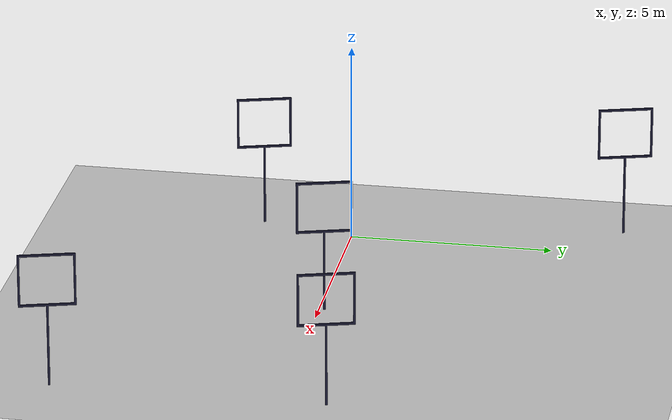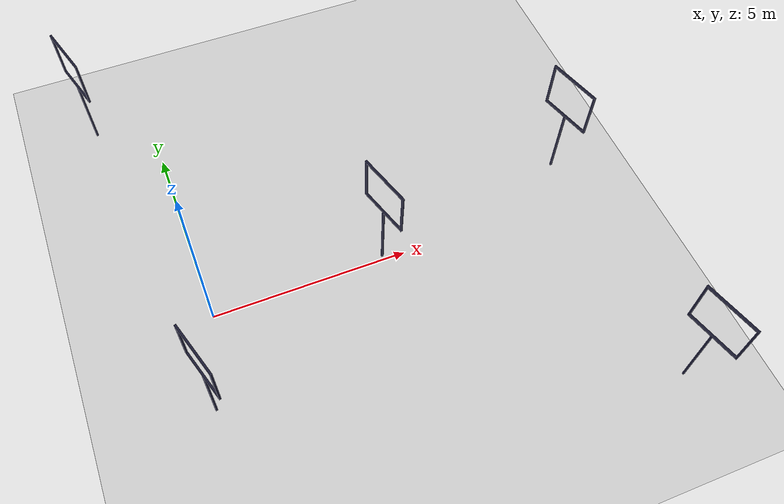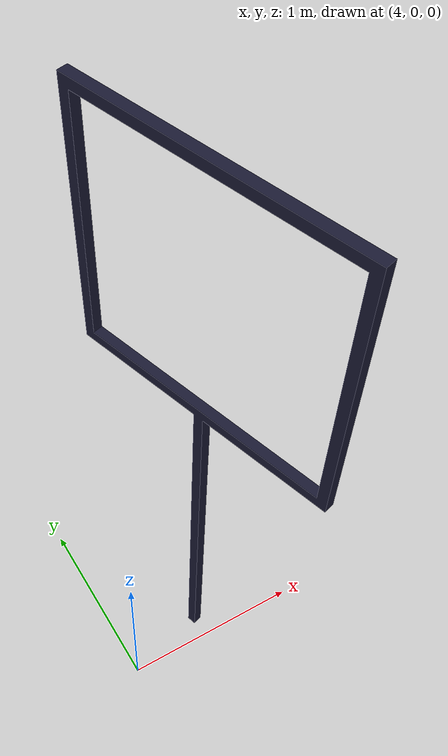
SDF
<sdf version="1.6">
 <world name="default">
  <model name="ground_plane">
   <static>1</static>
   <link name="link">
    <collision name="collision">
     <geometry><plane><normal>0 0 1</normal><size>100 100</size></plane></geometry>
     <surface>
      <contact><collide_bitmask>65535</collide_bitmask></contact>
      <friction><ode><mu>100</mu><mu2>50</mu2></ode></friction>
     </surface>
    </collision>
    <visual name="visual">
     <cast_shadows>0</cast_shadows>
     <geometry><plane><normal>0 0 1</normal><size>100 100</size></plane></geometry>
     <material>
      <script><uri>file://media/materials/scripts/gazebo.material</uri><name>Gazebo/Grey</name></script>
     </material>
    </visual>
   </link>
  </model>
  <light name="sun" type="directional">
   <pose>0 0 10 0 -0 0</pose>
   <diffuse>0.8 0.8 0.8 1</diffuse>
   <specular>0.2 0.2 0.2 1</specular>
   <attenuation>
    <range>1000</range>
    <constant>0.9</constant>
    <linear>0.01</linear>
    <quadratic>0.001</quadratic>
   </attenuation>
   <direction>-0.5 0.1 -0.9</direction>
  </light>
  <plugin name="ros_interface_plugin" filename="librotors_gazebo_ros_interface_plugin.so"/>
  <spherical_coordinates>
   <surface_model>EARTH_WGS84</surface_model>
   <latitude_deg>47.3667</latitude_deg>
   <longitude_deg>8.55</longitude_deg>
   <elevation>500</elevation>
   <heading_deg>0</heading_deg>
  </spherical_coordinates>
  <physics name="default_physics" default="0" type="ode">
   <ode>
    <solver>
     <type>quick</type>
     <iters>1000</iters>
     <sor>1.3</sor>
     <use_dynamic_moi_rescaling>0</use_dynamic_moi_rescaling>
    </solver>
    <constraints>
     <cfm>0</cfm>
     <erp>0.2</erp>
     <contact_max_correcting_vel>100</contact_max_correcting_vel>
     <contact_surface_layer>0.001</contact_surface_layer>
    </constraints>
   </ode>
   <max_step_size>0.01</max_step_size>
   <real_time_factor>1</real_time_factor>
   <real_time_update_rate>100</real_time_update_rate>
  </physics>
  <gravity>0 0 -9.8</gravity>
  <magnetic_field>6e-06 2.3e-05 -4.2e-05</magnetic_field>
  <atmosphere type="adiabatic"/>
  <scene><ambient>0.4 0.4 0.4 1</ambient><background>0.7 0.7 0.7 1</background><shadows>1</shadows></scene>
  <audio><device>default</device></audio>
  <model name="iROS2016 Track">
   <link name="gate_05">
    <pose>13 -6 0 0 -0 -1.28319</pose>
    <visual name="visual">
     <geometry><mesh><uri>model://iros2016_track/gates/05.dae</uri></mesh></geometry>
     <material>
      <ambient>0 0 1 1</ambient>
      <diffuse>0.1 0.1 0.2 1</diffuse>
      <specular>0 0 0 0</specular>
      <emissive>0 0 0 1</emissive>
     </material>
    </visual>
   </link>
   <static>1</static>
   <pose>-3.17929 0.60461 0 0 -0 0</pose>
  </model>
  <model name="iROS2016 Track_0">
   <link name="gate_05">
    <pose>13 -6 0 0 -0 -1.28319</pose>
    <visual name="visual">
     <geometry><mesh><uri>model://iros2016_track/gates/05.dae</uri></mesh></geometry>
     <material>
      <ambient>0 0 1 1</ambient>
      <diffuse>0.1 0.1 0.2 1</diffuse>
      <specular>0 0 0 0</specular>
      <emissive>0 0 0 1</emissive>
     </material>
    </visual>
   </link>
   <static>1</static>
   <pose>-13.5864 3.70194 0 0 -0 0</pose>
  </model>
  <model name="iROS2016 Track_1">
   <link name="gate_05">
    <pose>13 -6 0 0 -0 -1.28319</pose>
    <visual name="visual">
     <geometry><mesh><uri>model://iros2016_track/gates/05.dae</uri></mesh></geometry>
     <material>
      <ambient>0 0 1 1</ambient>
      <diffuse>0.1 0.1 0.2 1</diffuse>
      <specular>0 0 0 0</specular>
      <emissive>0 0 0 1</emissive>
     </material>
    </visual>
   </link>
   <static>1</static>
   <pose>-3.2164 7.13734 0 0 -0 0</pose>
  </model>
  <model name="iROS2016 Track_2">
   <link name="gate_05">
    <pose>13 -6 0 0 -0 -1.28319</pose>
    <visual name="visual">
     <geometry><mesh><uri>model://iros2016_track/gates/05.dae</uri></mesh></geometry>
     <material>
      <ambient>0 0 1 1</ambient>
      <diffuse>0.1 0.1 0.2 1</diffuse>
      <specular>0 0 0 0</specular>
      <emissive>0 0 0 1</emissive>
     </material>
    </visual>
   </link>
   <static>1</static>
   <pose>-14.4556 12.5941 0 0 -0 0</pose>
  </model>
  <model name="iROS2016 Track_3">
   <link name="gate_05">
    <pose>13 -6 0 0 -0 -1.28319</pose>
    <visual name="visual">
     <geometry><mesh><uri>model://iros2016_track/gates/05.dae</uri></mesh></geometry>
     <material>
      <ambient>0 0 1 1</ambient>
      <diffuse>0.1 0.1 0.2 1</diffuse>
      <specular>0 0 0 0</specular>
      <emissive>0 0 0 1</emissive>
     </material>
    </visual>
   </link>
   <static>1</static>
   <pose>-8.5494 6.12172 0 0 -0 0</pose>
  </model>
 </world>
</sdf>
